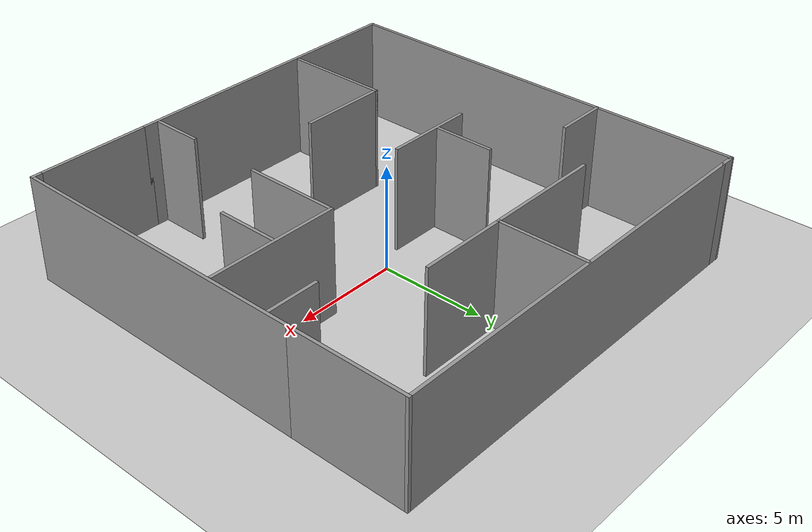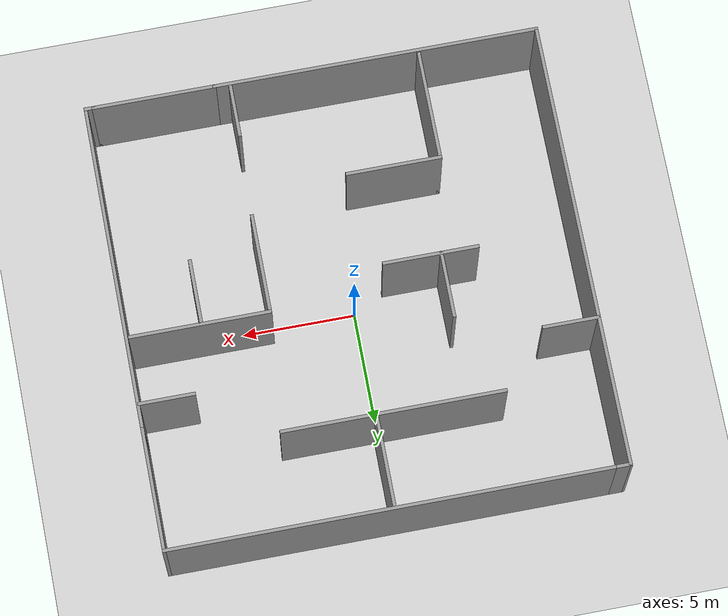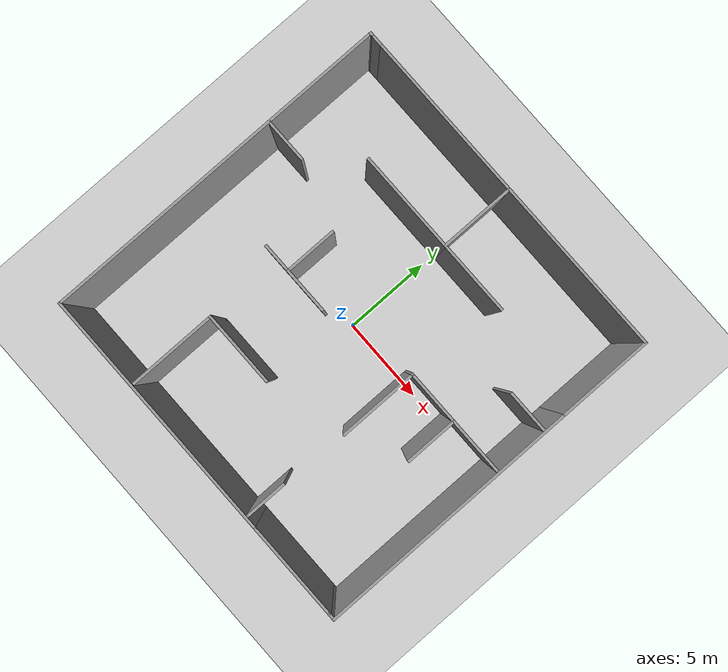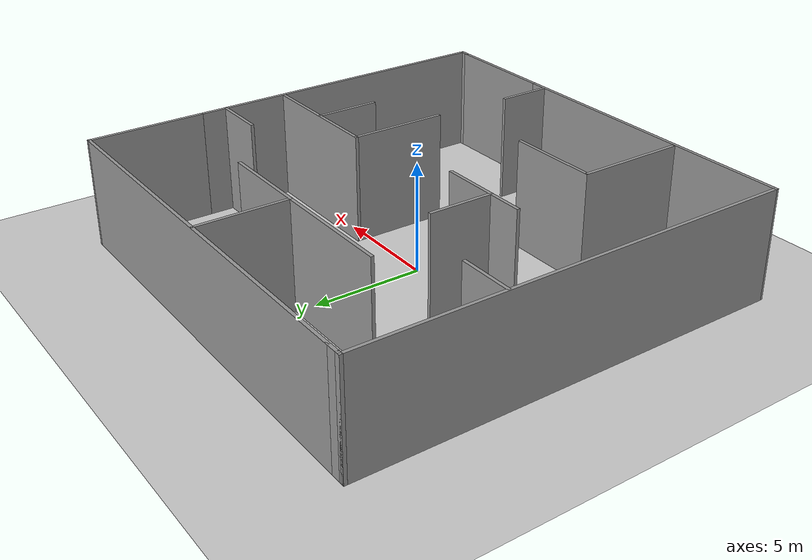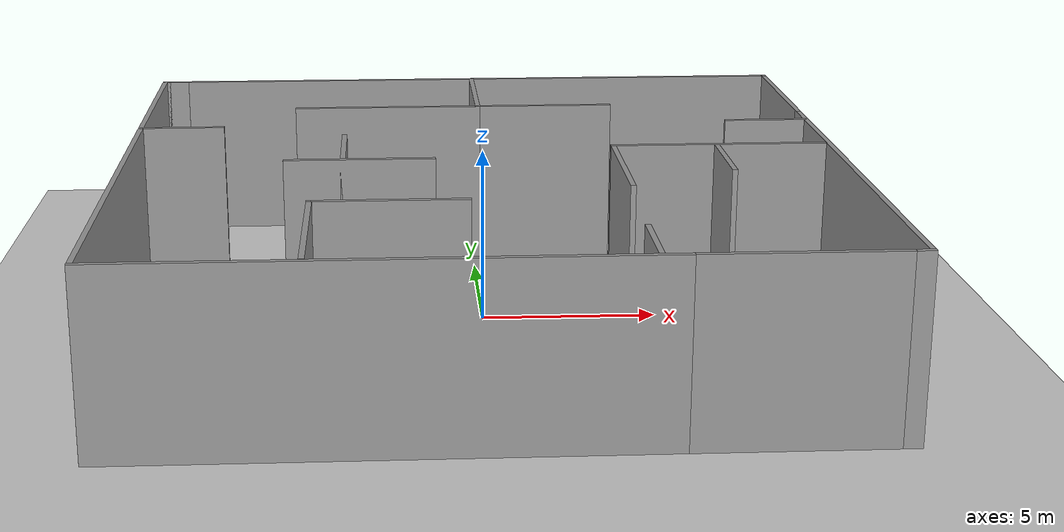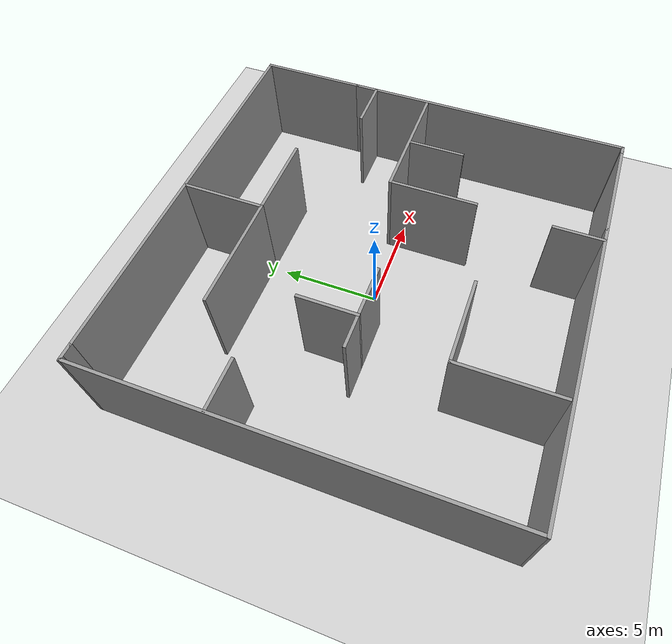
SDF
<sdf version="1.7">
 <world name="default">
  <plugin name="ros_interface_plugin" filename="librotors_gazebo_ros_interface_plugin.so"/>
  <light name="sun" type="directional">
   <pose>0 0 10 0 -0 0</pose>
   <diffuse>0.8 0.8 0.8 1</diffuse>
   <specular>0.2 0.2 0.2 1</specular>
   <attenuation>
    <range>1000</range>
    <constant>0.9</constant>
    <linear>0.01</linear>
    <quadratic>0.001</quadratic>
   </attenuation>
   <direction>-0.5 0.1 -0.9</direction>
   <spot><inner_angle>0</inner_angle><outer_angle>0</outer_angle><falloff>0</falloff></spot>
  </light>
  <model name="ground_plane">
   <static>1</static>
   <link name="link">
    <collision name="collision">
     <geometry><plane><normal>0 0 1</normal><size>100 100</size></plane></geometry>
     <surface><friction><ode><mu>100</mu><mu2>50</mu2></ode></friction></surface>
    </collision>
    <visual name="visual">
     <cast_shadows>0</cast_shadows>
     <geometry><plane><normal>0 0 1</normal><size>100 100</size></plane></geometry>
     <material>
      <script><uri>file://media/materials/scripts/gazebo.material</uri><name>Gazebo/Grey</name></script>
     </material>
    </visual>
   </link>
  </model>
  <gravity>0 0 -9.8</gravity>
  <magnetic_field>6e-06 2.3e-05 -4.2e-05</magnetic_field>
  <atmosphere type="adiabatic"/>
  <physics type="ode">
   <max_step_size>0.001</max_step_size>
   <real_time_factor>1</real_time_factor>
   <real_time_update_rate>1000</real_time_update_rate>
  </physics>
  <scene><ambient>0.4 0.4 0.4 1</ambient><background>0.7 0.7 0.7 1</background><shadows>1</shadows></scene>
  <spherical_coordinates>
   <surface_model>EARTH_WGS84</surface_model>
   <latitude_deg>0</latitude_deg>
   <longitude_deg>0</longitude_deg>
   <elevation>0</elevation>
   <heading_deg>0</heading_deg>
  </spherical_coordinates>
  <model name="Untitled">
   <pose>0.008305 -0.01415 0 0 -0 0</pose>
   <link name="Wall_11">
    <collision name="Wall_11_Collision">
     <geometry><box><size>14.5 0.15 5.0</size></box></geometry>
     <pose>0 0 2.5 0 -0 0</pose>
    </collision>
    <visual name="Wall_11_Visual">
     <pose>0 0 2.5 0 -0 0</pose>
     <geometry><box><size>14.5 0.15 5.0</size></box></geometry>
     <material>
      <script><uri>file://media/materials/scripts/gazebo.material</uri><name>Gazebo/Grey</name></script>
      <ambient>1 1 1 1</ambient>
     </material>
     <meta><layer>0</layer></meta>
    </visual>
    <pose>-2.85 -9.975 0 0 -0 0</pose>
   </link>
   <link name="Wall_13">
    <collision name="Wall_13_Collision">
     <geometry><box><size>5.5 0.15 5.0</size></box></geometry>
     <pose>0 0 2.5 0 -0 0</pose>
    </collision>
    <visual name="Wall_13_Visual">
     <pose>0 0 2.5 0 -0 0</pose>
     <geometry><box><size>5.5 0.15 5.0</size></box></geometry>
     <material>
      <script><uri>file://media/materials/scripts/gazebo.material</uri><name>Gazebo/Grey</name></script>
      <ambient>1 1 1 1</ambient>
     </material>
     <meta><layer>0</layer></meta>
    </visual>
    <pose>7 -9.975 0 0 -0 0</pose>
   </link>
   <link name="Wall_14">
    <collision name="Wall_14_Collision">
     <geometry><box><size>0.5 0.15 5.0</size></box></geometry>
     <pose>0 0 2.5 0 -0 0</pose>
    </collision>
    <visual name="Wall_14_Visual">
     <pose>0 0 2.5 0 -0 0</pose>
     <geometry><box><size>0.5 0.15 5.0</size></box></geometry>
     <material>
      <script><uri>file://media/materials/scripts/gazebo.material</uri><name>Gazebo/Grey</name></script>
      <ambient>1 1 1 1</ambient>
     </material>
     <meta><layer>0</layer></meta>
    </visual>
    <pose>9.85 -9.975 0 0 -0 0</pose>
   </link>
   <link name="Wall_15">
    <collision name="Wall_15_Collision">
     <geometry><box><size>14.75 0.15 5.0</size></box></geometry>
     <pose>0 0 2.5 0 -0 0</pose>
    </collision>
    <visual name="Wall_15_Visual">
     <pose>0 0 2.5 0 -0 0</pose>
     <geometry><box><size>14.75 0.15 5.0</size></box></geometry>
     <material>
      <script><uri>file://media/materials/scripts/gazebo.material</uri><name>Gazebo/Grey</name></script>
      <ambient>1 1 1 1</ambient>
     </material>
     <meta><layer>0</layer></meta>
    </visual>
    <pose>10.025 -2.675 0 0 -0 1.5708</pose>
   </link>
   <link name="Wall_17">
    <collision name="Wall_17_Collision">
     <geometry><box><size>5.5 0.15 5.0</size></box></geometry>
     <pose>0 0 2.5 0 -0 0</pose>
    </collision>
    <visual name="Wall_17_Visual">
     <pose>0 0 2.5 0 -0 0</pose>
     <geometry><box><size>5.5 0.15 5.0</size></box></geometry>
     <material>
      <script><uri>file://media/materials/scripts/gazebo.material</uri><name>Gazebo/Grey</name></script>
      <ambient>1 1 1 1</ambient>
     </material>
     <meta><layer>0</layer></meta>
    </visual>
    <pose>10.025 7.3 0 0 -0 1.5708</pose>
   </link>
   <link name="Wall_19">
    <collision name="Wall_19_Collision">
     <geometry><box><size>19.5 0.15 5.0</size></box></geometry>
     <pose>0 0 2.5 0 -0 0</pose>
    </collision>
    <visual name="Wall_19_Visual">
     <pose>0 0 2.5 0 -0 0</pose>
     <geometry><box><size>19.5 0.15 5.0</size></box></geometry>
     <material>
      <script><uri>file://media/materials/scripts/gazebo.material</uri><name>Gazebo/Grey</name></script>
      <ambient>1 1 1 1</ambient>
     </material>
     <meta><layer>0</layer></meta>
    </visual>
    <pose>0.35 9.975 0 0 -0 3.14159</pose>
   </link>
   <link name="Wall_23">
    <collision name="Wall_23_Collision">
     <geometry><box><size>0.75 0.15 5.0</size></box></geometry>
     <pose>0 0 2.5 0 -0 0</pose>
    </collision>
    <visual name="Wall_23_Visual">
     <pose>0 0 2.5 0 -0 0</pose>
     <geometry><box><size>0.75 0.15 5.0</size></box></geometry>
     <material>
      <script><uri>file://media/materials/scripts/gazebo.material</uri><name>Gazebo/Grey</name></script>
      <ambient>1 1 1 1</ambient>
     </material>
     <meta><layer>0</layer></meta>
    </visual>
    <pose>-9.625 9.975 0 0 -0 3.14159</pose>
   </link>
   <link name="Wall_24">
    <collision name="Wall_24_Collision">
     <geometry><box><size>0.25 0.15 5.0</size></box></geometry>
     <pose>0 0 2.5 0 -0 0</pose>
    </collision>
    <visual name="Wall_24_Visual">
     <pose>0 0 2.5 0 -0 0</pose>
     <geometry><box><size>0.25 0.15 5.0</size></box></geometry>
     <material>
      <script><uri>file://media/materials/scripts/gazebo.material</uri><name>Gazebo/Grey</name></script>
      <ambient>1 1 1 1</ambient>
     </material>
     <meta><layer>0</layer></meta>
    </visual>
    <pose>-9.975 9.975 0 0 -0 3.14159</pose>
   </link>
   <link name="Wall_25">
    <collision name="Wall_25_Collision">
     <geometry><box><size>20 0.15 5.0</size></box></geometry>
     <pose>0 0 2.5 0 -0 0</pose>
    </collision>
    <visual name="Wall_25_Visual">
     <pose>0 0 2.5 0 -0 0</pose>
     <geometry><box><size>20 0.15 5.0</size></box></geometry>
     <material>
      <script><uri>file://media/materials/scripts/gazebo.material</uri><name>Gazebo/Grey</name></script>
      <ambient>1 1 1 1</ambient>
     </material>
     <meta><layer>0</layer></meta>
    </visual>
    <pose>-10.025 0.05 0 0 -0 -1.5708</pose>
   </link>
   <link name="Wall_31">
    <collision name="Wall_31_Collision">
     <geometry><box><size>4.25 0.15 5.0</size></box></geometry>
     <pose>0 0 2.5 0 -0 0</pose>
    </collision>
    <visual name="Wall_31_Visual">
     <pose>0 0 2.5 0 -0 0</pose>
     <geometry><box><size>4.25 0.15 5.0</size></box></geometry>
     <material>
      <script><uri>file://media/materials/scripts/gazebo.material</uri><name>Gazebo/Grey</name></script>
      <ambient>1 1 1 1</ambient>
     </material>
     <meta><layer>0</layer></meta>
    </visual>
    <pose>0.141214 7.88193 0 0 -0 -1.5708</pose>
   </link>
   <link name="Wall_32">
    <collision name="Wall_32_Collision">
     <geometry><box><size>5.75 0.15 5.0</size></box></geometry>
     <pose>0 0 2.5 0 -0 0</pose>
    </collision>
    <visual name="Wall_32_Visual">
     <pose>0 0 2.5 0 -0 0</pose>
     <geometry><box><size>5.75 0.15 5.0</size></box></geometry>
     <material>
      <script><uri>file://media/materials/scripts/gazebo.material</uri><name>Gazebo/Grey</name></script>
      <ambient>1 1 1 1</ambient>
     </material>
     <meta><layer>0</layer></meta>
    </visual>
    <pose>-2.65879 5.83193 0 0 -0 3.14159</pose>
   </link>
   <link name="Wall_34">
    <collision name="Wall_34_Collision">
     <geometry><box><size>4.25 0.15 5.0</size></box></geometry>
     <pose>0 0 2.5 0 -0 0</pose>
    </collision>
    <visual name="Wall_34_Visual">
     <pose>0 0 2.5 0 -0 0</pose>
     <geometry><box><size>4.25 0.15 5.0</size></box></geometry>
     <material>
      <script><uri>file://media/materials/scripts/gazebo.material</uri><name>Gazebo/Grey</name></script>
      <ambient>1 1 1 1</ambient>
     </material>
     <meta><layer>0</layer></meta>
    </visual>
    <pose>2.19121 5.83193 0 0 -0 0</pose>
   </link>
   <link name="Wall_36">
    <collision name="Wall_36_Collision">
     <geometry><box><size>6.25 0.15 5.0</size></box></geometry>
     <pose>0 0 2.5 0 -0 0</pose>
    </collision>
    <visual name="Wall_36_Visual">
     <pose>0 0 2.5 0 -0 0</pose>
     <geometry><box><size>6.25 0.15 5.0</size></box></geometry>
     <material>
      <script><uri>file://media/materials/scripts/gazebo.material</uri><name>Gazebo/Grey</name></script>
      <ambient>1 1 1 1</ambient>
     </material>
     <meta><layer>0</layer></meta>
    </visual>
    <pose>6.81471 0.534102 0 0 -0 3.14159</pose>
   </link>
   <link name="Wall_37">
    <collision name="Wall_37_Collision">
     <geometry><box><size>4.5 0.15 5.0</size></box></geometry>
     <pose>0 0 2.5 0 -0 0</pose>
    </collision>
    <visual name="Wall_37_Visual">
     <pose>0 0 2.5 0 -0 0</pose>
     <geometry><box><size>4.5 0.15 5.0</size></box></geometry>
     <material>
      <script><uri>file://media/materials/scripts/gazebo.material</uri><name>Gazebo/Grey</name></script>
      <ambient>1 1 1 1</ambient>
     </material>
     <meta><layer>0</layer></meta>
    </visual>
    <pose>3.76471 -1.6409 0 0 -0 -1.5708</pose>
   </link>
   <link name="Wall_39">
    <collision name="Wall_39_Collision">
     <geometry><box><size>5 0.15 5.0</size></box></geometry>
     <pose>0 0 2.5 0 -0 0</pose>
    </collision>
    <visual name="Wall_39_Visual">
     <pose>0 0 2.5 0 -0 0</pose>
     <geometry><box><size>5 0.15 5.0</size></box></geometry>
     <material>
      <script><uri>file://media/materials/scripts/gazebo.material</uri><name>Gazebo/Grey</name></script>
      <ambient>1 1 1 1</ambient>
     </material>
     <meta><layer>0</layer></meta>
    </visual>
    <pose>-4.7438 -7.36921 0 0 -0 1.5708</pose>
   </link>
   <link name="Wall_40">
    <collision name="Wall_40_Collision">
     <geometry><box><size>4.25 0.15 5.0</size></box></geometry>
     <pose>0 0 2.5 0 -0 0</pose>
    </collision>
    <visual name="Wall_40_Visual">
     <pose>0 0 2.5 0 -0 0</pose>
     <geometry><box><size>4.25 0.15 5.0</size></box></geometry>
     <material>
      <script><uri>file://media/materials/scripts/gazebo.material</uri><name>Gazebo/Grey</name></script>
      <ambient>1 1 1 1</ambient>
     </material>
     <meta><layer>0</layer></meta>
    </visual>
    <pose>-2.6938 -4.94421 0 0 -0 0</pose>
   </link>
   <link name="Wall_43">
    <collision name="Wall_43_Collision">
     <geometry><box><size>2.5 0.15 5.0</size></box></geometry>
     <pose>0 0 2.5 0 -0 0</pose>
    </collision>
    <visual name="Wall_43_Visual">
     <pose>0 0 2.5 0 -0 0</pose>
     <geometry><box><size>2.5 0.15 5.0</size></box></geometry>
     <material>
      <script><uri>file://media/materials/scripts/gazebo.material</uri><name>Gazebo/Grey</name></script>
      <ambient>1 1 1 1</ambient>
     </material>
     <meta><layer>0</layer></meta>
    </visual>
    <pose>3.63051 -8.75878 0 0 -0 1.5708</pose>
   </link>
   <link name="Wall_45">
    <collision name="Wall_45_Collision">
     <geometry><box><size>4.25 0.15 5.0</size></box></geometry>
     <pose>0 0 2.5 0 -0 0</pose>
    </collision>
    <visual name="Wall_45_Visual">
     <pose>0 0 2.5 0 -0 0</pose>
     <geometry><box><size>4.25 0.15 5.0</size></box></geometry>
     <material>
      <script><uri>file://media/materials/scripts/gazebo.material</uri><name>Gazebo/Grey</name></script>
      <ambient>1 1 1 1</ambient>
     </material>
     <meta><layer>0</layer></meta>
    </visual>
    <pose>-3.4906 -0.67552 0 0 -0 3.14159</pose>
   </link>
   <link name="Wall_50">
    <collision name="Wall_50_Collision">
     <geometry><box><size>3 0.15 5.0</size></box></geometry>
     <pose>0 0 2.5 0 -0 0</pose>
    </collision>
    <visual name="Wall_50_Visual">
     <pose>0 0 2.5 0 -0 0</pose>
     <geometry><box><size>3 0.15 5.0</size></box></geometry>
     <material>
      <script><uri>file://media/materials/scripts/gazebo.material</uri><name>Gazebo/Grey</name></script>
      <ambient>1 1 1 1</ambient>
     </material>
     <meta><layer>0</layer></meta>
    </visual>
    <pose>-3.95289 0.74948 0 0 -0 1.5708</pose>
   </link>
   <link name="Wall_52">
    <collision name="Wall_52_Collision">
     <geometry><box><size>2.5 0.15 5.0</size></box></geometry>
     <pose>0 0 2.5 0 -0 0</pose>
    </collision>
    <visual name="Wall_52_Visual">
     <pose>0 0 2.5 0 -0 0</pose>
     <geometry><box><size>2.5 0.15 5.0</size></box></geometry>
     <material>
      <script><uri>file://media/materials/scripts/gazebo.material</uri><name>Gazebo/Grey</name></script>
      <ambient>1 1 1 1</ambient>
     </material>
     <meta><layer>0</layer></meta>
    </visual>
    <pose>8.78276 3.51163 0 0 -0 3.14159</pose>
   </link>
   <link name="Wall_56">
    <collision name="Wall_56_Collision">
     <geometry><box><size>3 0.15 5.0</size></box></geometry>
     <pose>0 0 2.5 0 -0 0</pose>
    </collision>
    <visual name="Wall_56_Visual">
     <pose>0 0 2.5 0 -0 0</pose>
     <geometry><box><size>3 0.15 5.0</size></box></geometry>
     <material>
      <script><uri>file://media/materials/scripts/gazebo.material</uri><name>Gazebo/Grey</name></script>
      <ambient>1 1 1 1</ambient>
     </material>
     <meta><layer>0</layer></meta>
    </visual>
    <pose>6.75281 -0.891881 0 0 -0 -1.5708</pose>
   </link>
   <link name="Wall_58">
    <collision name="Wall_58_Collision">
     <geometry><box><size>2.5 0.15 5.0</size></box></geometry>
     <pose>0 0 2.5 0 -0 0</pose>
    </collision>
    <visual name="Wall_58_Visual">
     <pose>0 0 2.5 0 -0 0</pose>
     <geometry><box><size>2.5 0.15 5.0</size></box></geometry>
     <material>
      <script><uri>file://media/materials/scripts/gazebo.material</uri><name>Gazebo/Grey</name></script>
      <ambient>1 1 1 1</ambient>
     </material>
     <meta><layer>0</layer></meta>
    </visual>
    <pose>-8.80597 3.39831 0 0 -0 0</pose>
   </link>
   <static>1</static>
  </model>
 </world>
</sdf>
